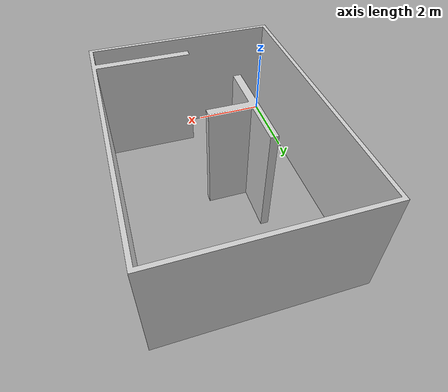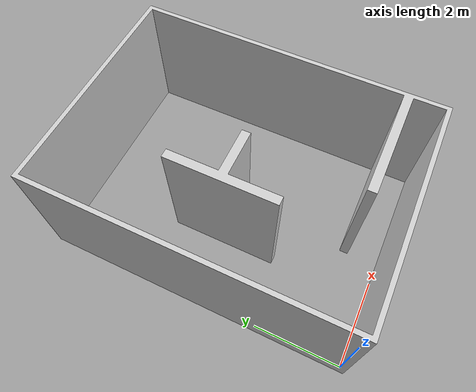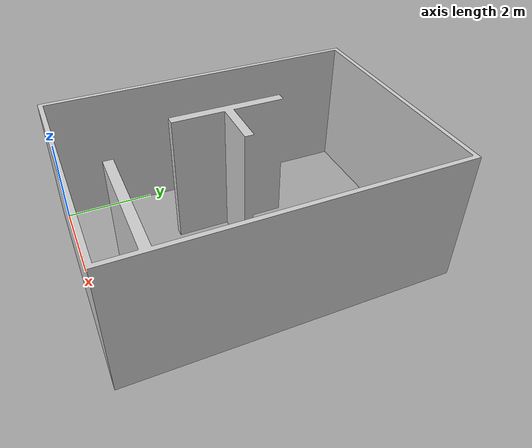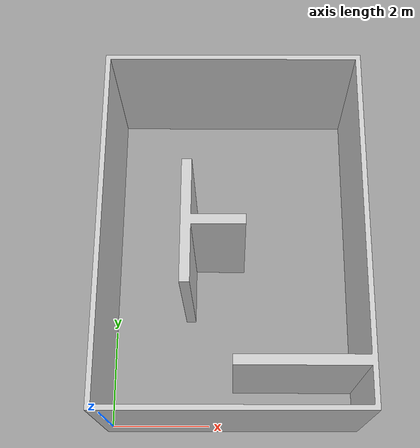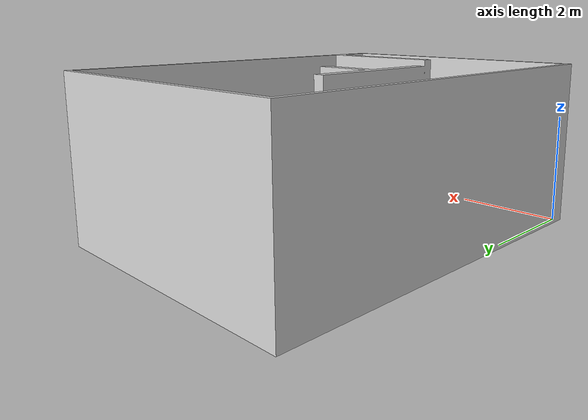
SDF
<?xml version="1.0" ?>
<sdf version="1.4">
  <model name="sim_iros16">
    <static>true</static>
    <pose>0 0 0 0 0 0</pose>
    <link name="walls">
      <collision name="collision">
        <geometry>
          <mesh>
            <uri>model://sim_iros16/meshes/sim_iros16_meshlab.dae</uri>
          </mesh>
        </geometry>
      </collision>
      <visual name="visual">
        <geometry>
          <mesh>
            <uri>model://sim_iros16/meshes/sim_iros16_meshlab.dae</uri>
          </mesh>
        </geometry>
        <cast_shadows>false</cast_shadows>
      </visual>
    </link>
  </model>
</sdf>
